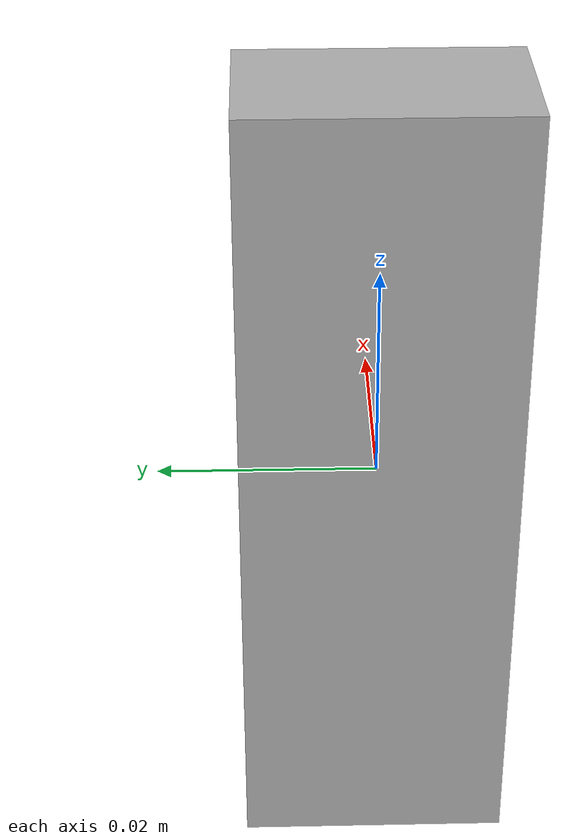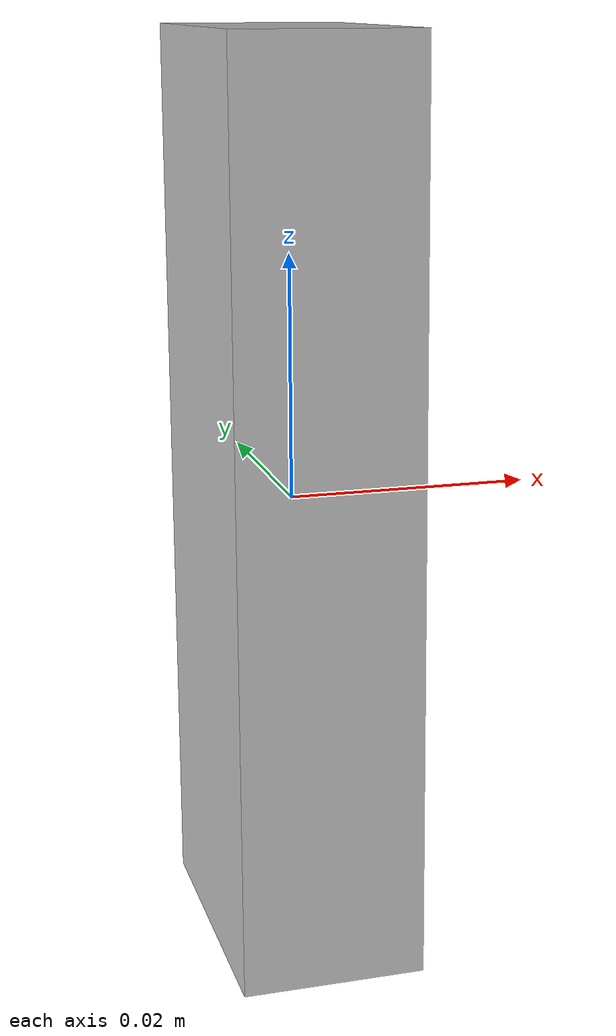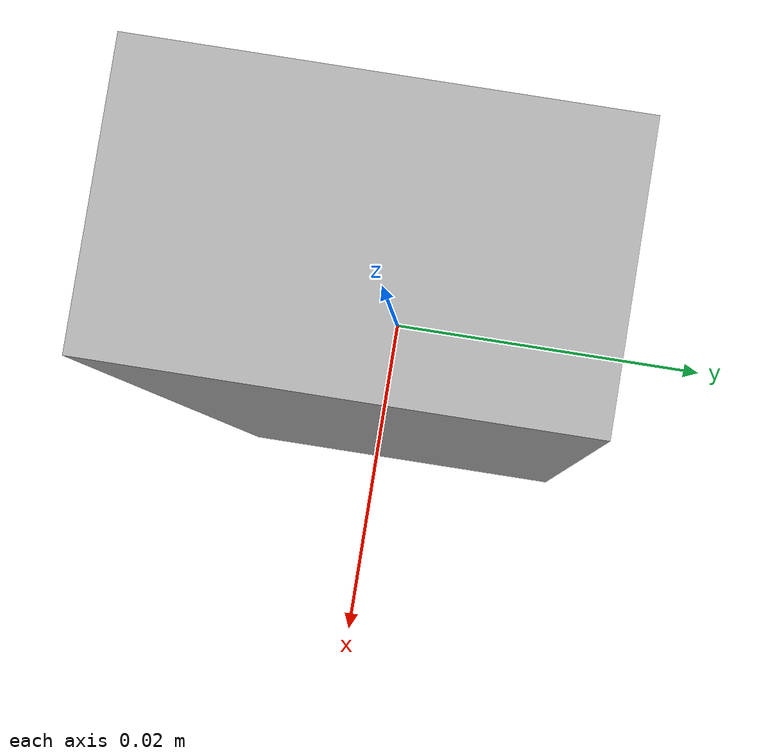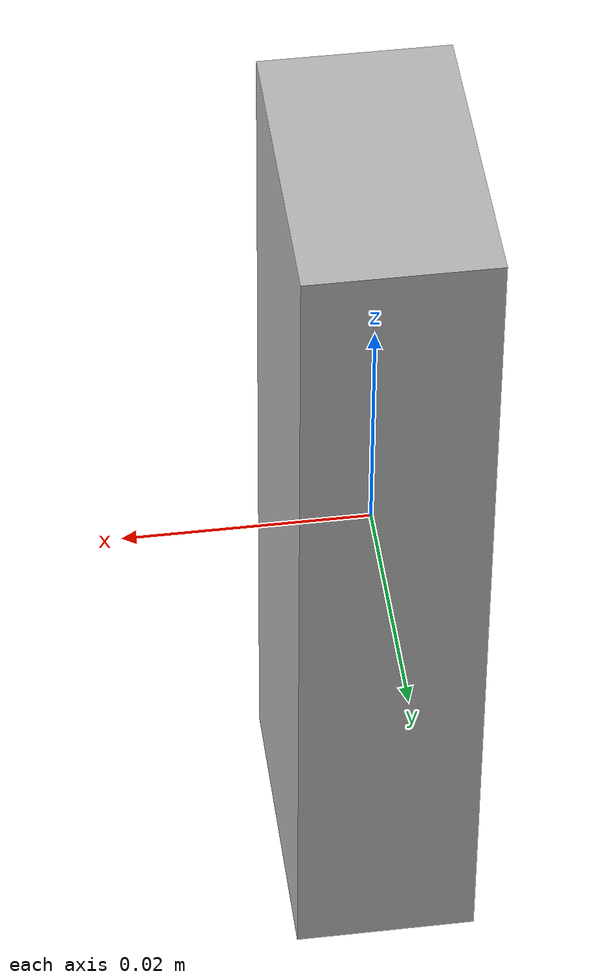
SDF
<?xml version='1.0'?>
<sdf version='1.6'>
    <model name='jenga_block'>
        <static>false</static>
        <allow_auto_disable>false</allow_auto_disable>

        <pose>0 0 0 0 0 0</pose>

        <link name='link'>
            <pose>0 0 0 0 0 0</pose>

            <inertial>
                <mass>0.0107</mass>
                <pose>0 0 0 0 0 0</pose>
                <inertia>
                    <ixx>0.000060745</ixx>
                    <iyy>0.000025078</iyy>
                    <izz>0.000020620</izz>
                </inertia>
            </inertial>

            <gravity>true</gravity>

            <collision name='collision'>
              <geometry>
                <box>
                  <size>0.015 0.025 0.075</size>
                </box>
              </geometry>
              <surface>
                <friction>
                  <ode>
                    <mu>1</mu>
                    <mu2>1</mu2>
                  </ode>
                </friction>
              </surface>
            </collision>

            <visual name='visual'>
                <geometry>
                  <box>
                    <size>0.015 0.025 0.075</size>
                  </box>
                </geometry>
            </visual>

        </link>
    </model>
</sdf>
